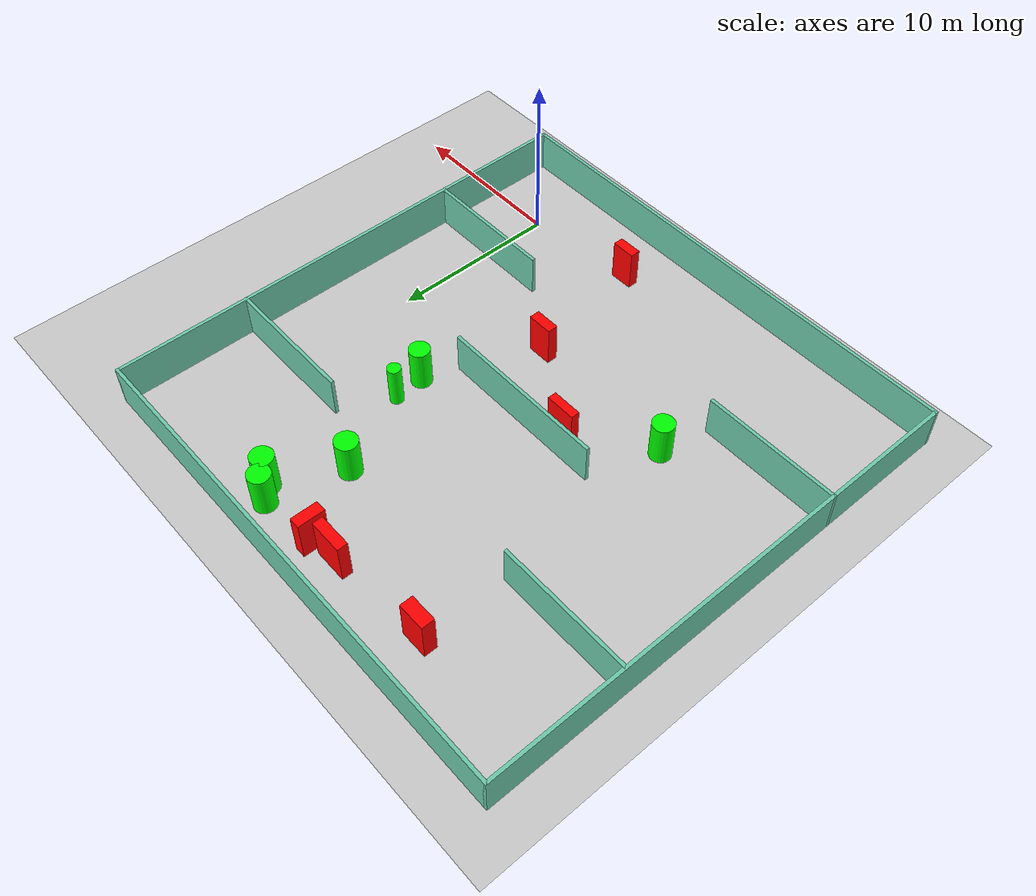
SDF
<sdf version="1.7">
 <world name="default">
  <light name="sun" type="directional">
   <pose>0 0 10 0 -0 0</pose>
   <diffuse>0.8 0.8 0.8 1</diffuse>
   <specular>0.2 0.2 0.2 1</specular>
   <attenuation>
    <range>1000</range>
    <constant>0.9</constant>
    <linear>0.01</linear>
    <quadratic>0.001</quadratic>
   </attenuation>
   <direction>-0.5 0.1 -0.9</direction>
   <spot><inner_angle>0</inner_angle><outer_angle>0</outer_angle><falloff>0</falloff></spot>
  </light>
  <model name="ground_plane">
   <static>1</static>
   <link name="link">
    <collision name="collision">
     <geometry><plane><normal>0 0 1</normal><size>100 100</size></plane></geometry>
     <surface>
      <contact><collide_bitmask>65535</collide_bitmask></contact>
      <friction><ode><mu>100</mu><mu2>50</mu2></ode></friction>
     </surface>
    </collision>
    <visual name="visual">
     <cast_shadows>0</cast_shadows>
     <geometry><plane><normal>0 0 1</normal><size>100 100</size></plane></geometry>
     <material>
      <script><uri>file://media/materials/scripts/gazebo.material</uri><name>Gazebo/Grey</name></script>
     </material>
    </visual>
   </link>
  </model>
  <gravity>0 0 -9.8</gravity>
  <magnetic_field>6e-06 2.3e-05 -4.2e-05</magnetic_field>
  <atmosphere type="adiabatic"/>
  <physics type="ode">
   <max_step_size>0.001</max_step_size>
   <real_time_factor>1</real_time_factor>
   <real_time_update_rate>1000</real_time_update_rate>
  </physics>
  <scene><ambient>0.4 0.4 0.4 1</ambient><background>0.7 0.7 0.7 1</background><shadows>1</shadows></scene>
  <spherical_coordinates>
   <surface_model>EARTH_WGS84</surface_model>
   <latitude_deg>0</latitude_deg>
   <longitude_deg>0</longitude_deg>
   <elevation>0</elevation>
   <heading_deg>0</heading_deg>
  </spherical_coordinates>
  <model name="my_base_walls">
   <link name="Wall_10">
    <collision name="Wall_10_Collision">
     <geometry><box><size>8.2 0.2 2.5</size></box></geometry>
     <pose>0 0 1.25 0 -0 0</pose>
    </collision>
    <visual name="Wall_10_Visual">
     <pose>0 0 1.25 0 -0 0</pose>
     <geometry><box><size>8.2 0.2 2.5</size></box></geometry>
     <material>
      <script><uri>file://media/materials/scripts/gazebo.material</uri><name>Gazebo/Grey</name></script>
      <ambient>0.435294 0.796078 0.67451 1</ambient>
     </material>
     <meta><layer>0</layer></meta>
    </visual>
    <pose>-11 -7 0 0 -0 0</pose>
   </link>
   <link name="Wall_12">
    <collision name="Wall_12_Collision">
     <geometry><box><size>8.2 0.2 2.5</size></box></geometry>
     <pose>0 0 1.25 0 -0 0</pose>
    </collision>
    <visual name="Wall_12_Visual">
     <pose>0 0 1.25 0 -0 0</pose>
     <geometry><box><size>8.2 0.2 2.5</size></box></geometry>
     <material>
      <script><uri>file://media/materials/scripts/gazebo.material</uri><name>Gazebo/Grey</name></script>
      <ambient>0.435294 0.796078 0.67451 1</ambient>
     </material>
     <meta><layer>0</layer></meta>
    </visual>
    <pose>-11 7 0 0 -0 0</pose>
   </link>
   <link name="Wall_14">
    <collision name="Wall_14_Collision">
     <geometry><box><size>8.2 0.2 2.5</size></box></geometry>
     <pose>0 0 1.25 0 -0 0</pose>
    </collision>
    <visual name="Wall_14_Visual">
     <pose>0 0 1.25 0 -0 0</pose>
     <geometry><box><size>8.2 0.2 2.5</size></box></geometry>
     <material>
      <script><uri>file://media/materials/scripts/gazebo.material</uri><name>Gazebo/Grey</name></script>
      <ambient>0.435294 0.796078 0.67451 1</ambient>
     </material>
     <meta><layer>0</layer></meta>
    </visual>
    <pose>11 7 0 0 -0 3.14159</pose>
   </link>
   <link name="Wall_16">
    <collision name="Wall_16_Collision">
     <geometry><box><size>10.2 0.2 2.5</size></box></geometry>
     <pose>0 0 1.25 0 -0 0</pose>
    </collision>
    <visual name="Wall_16_Visual">
     <pose>0 0 1.25 0 -0 0</pose>
     <geometry><box><size>10.2 0.2 2.5</size></box></geometry>
     <material>
      <script><uri>file://media/materials/scripts/gazebo.material</uri><name>Gazebo/Grey</name></script>
      <ambient>0.435294 0.796078 0.67451 1</ambient>
     </material>
     <meta><layer>0</layer></meta>
    </visual>
    <pose>0 0 0 0 -0 3.14159</pose>
   </link>
   <link name="Wall_2">
    <collision name="Wall_2_Collision">
     <geometry><box><size>30.2 0.2 2.5</size></box></geometry>
     <pose>0 0 1.25 0 -0 0</pose>
    </collision>
    <visual name="Wall_2_Visual">
     <pose>0 0 1.25 0 -0 0</pose>
     <geometry><box><size>30.2 0.2 2.5</size></box></geometry>
     <material>
      <script><uri>file://media/materials/scripts/gazebo.material</uri><name>Gazebo/Grey</name></script>
      <ambient>0.435294 0.796078 0.67451 1</ambient>
     </material>
     <meta><layer>0</layer></meta>
    </visual>
    <pose>0 -15 0 0 -0 3.14159</pose>
   </link>
   <link name="Wall_3">
    <collision name="Wall_3_Collision">
     <geometry><box><size>30.2 0.2 2.5</size></box></geometry>
     <pose>0 0 1.25 0 -0 0</pose>
    </collision>
    <visual name="Wall_3_Visual">
     <pose>0 0 1.25 0 -0 0</pose>
     <geometry><box><size>30.2 0.2 2.5</size></box></geometry>
     <material>
      <script><uri>file://media/materials/scripts/gazebo.material</uri><name>Gazebo/Grey</name></script>
      <ambient>0.435294 0.796078 0.67451 1</ambient>
     </material>
     <meta><layer>0</layer></meta>
    </visual>
    <pose>-15 0 0 0 -0 1.5708</pose>
   </link>
   <link name="Wall_4">
    <collision name="Wall_4_Collision">
     <geometry><box><size>30.2 0.2 2.5</size></box></geometry>
     <pose>0 0 1.25 0 -0 0</pose>
    </collision>
    <visual name="Wall_4_Visual">
     <pose>0 0 1.25 0 -0 0</pose>
     <geometry><box><size>30.2 0.2 2.5</size></box></geometry>
     <material>
      <script><uri>file://media/materials/scripts/gazebo.material</uri><name>Gazebo/Grey</name></script>
      <ambient>0.435294 0.796078 0.67451 1</ambient>
     </material>
     <meta><layer>0</layer></meta>
    </visual>
    <pose>0 15 0 0 -0 0</pose>
   </link>
   <link name="Wall_6">
    <collision name="Wall_6_Collision">
     <geometry><box><size>30.2 0.2 2.5</size></box></geometry>
     <pose>0 0 1.25 0 -0 0</pose>
    </collision>
    <visual name="Wall_6_Visual">
     <pose>0 0 1.25 0 -0 0</pose>
     <geometry><box><size>30.2 0.2 2.5</size></box></geometry>
     <material>
      <script><uri>file://media/materials/scripts/gazebo.material</uri><name>Gazebo/Grey</name></script>
      <ambient>0.435294 0.796078 0.67451 1</ambient>
     </material>
     <meta><layer>0</layer></meta>
    </visual>
    <pose>15 0 0 0 -0 1.5708</pose>
   </link>
   <link name="Wall_8">
    <collision name="Wall_8_Collision">
     <geometry><box><size>8.2 0.2 2.5</size></box></geometry>
     <pose>0 0 1.25 0 -0 0</pose>
    </collision>
    <visual name="Wall_8_Visual">
     <pose>0 0 1.25 0 -0 0</pose>
     <geometry><box><size>8.2 0.2 2.5</size></box></geometry>
     <material>
      <script><uri>file://media/materials/scripts/gazebo.material</uri><name>Gazebo/Grey</name></script>
      <ambient>0.435294 0.796078 0.67451 1</ambient>
     </material>
     <meta><layer>0</layer></meta>
    </visual>
    <pose>11 -7 0 0 -0 3.14159</pose>
   </link>
   <static>1</static>
   <pose>-11 11 0 0 -0 0</pose>
  </model>
  <model name="cylinder1">
   <static>1</static>
   <link name="link">
    <inertial>
     <mass>1</mass>
     <inertia><ixx>0.5</ixx><ixy>0</ixy><ixz>0</ixz><iyy>0.5</iyy><iyz>0</iyz><izz>1</izz></inertia>
    </inertial>
    <collision name="collision">
     <geometry><cylinder><radius>0.39538634632470365</radius><length>2.5</length></cylinder></geometry>
    </collision>
    <visual name="visual">
     <geometry><cylinder><radius>0.39538634632470365</radius><length>2.5</length></cylinder></geometry>
     <material>
      <ambient>0 1 0 1</ambient>
      <diffuse>0 1 0 1</diffuse>
      <specular>0.1 0.1 0.1 1</specular>
      <emissive>0 0 0 0</emissive>
     </material>
    </visual>
   </link>
   <pose>-5.423299868629563 14.99625423911587 1.25 0 0 0</pose>
  </model>
  <model name="cylinder2">
   <static>1</static>
   <link name="link">
    <inertial>
     <mass>1</mass>
     <inertia><ixx>0.5</ixx><ixy>0</ixy><ixz>0</ixz><iyy>0.5</iyy><iyz>0</iyz><izz>1</izz></inertia>
    </inertial>
    <collision name="collision">
     <geometry><cylinder><radius>0.6473197470135983</radius><length>2.5</length></cylinder></geometry>
    </collision>
    <visual name="visual">
     <geometry><cylinder><radius>0.6473197470135983</radius><length>2.5</length></cylinder></geometry>
     <material>
      <ambient>0 1 0 1</ambient>
      <diffuse>0 1 0 1</diffuse>
      <specular>0.1 0.1 0.1 1</specular>
      <emissive>0 0 0 0</emissive>
     </material>
    </visual>
   </link>
   <pose>-6.576218445684717 24.21504631854563 1.25 0 0 0</pose>
  </model>
  <model name="cylinder3">
   <static>1</static>
   <link name="link">
    <inertial>
     <mass>1</mass>
     <inertia><ixx>0.5</ixx><ixy>0</ixy><ixz>0</ixz><iyy>0.5</iyy><iyz>0</iyz><izz>1</izz></inertia>
    </inertial>
    <collision name="collision">
     <geometry><cylinder><radius>0.659853955017178</radius><length>2.5</length></cylinder></geometry>
    </collision>
    <visual name="visual">
     <geometry><cylinder><radius>0.659853955017178</radius><length>2.5</length></cylinder></geometry>
     <material>
      <ambient>0 1 0 1</ambient>
      <diffuse>0 1 0 1</diffuse>
      <specular>0.1 0.1 0.1 1</specular>
      <emissive>0 0 0 0</emissive>
     </material>
    </visual>
   </link>
   <pose>-7.727299230462403 19.76601484605504 1.25 0 0 0</pose>
  </model>
  <model name="cylinder4">
   <static>1</static>
   <link name="link">
    <inertial>
     <mass>1</mass>
     <inertia><ixx>0.5</ixx><ixy>0</ixy><ixz>0</ixz><iyy>0.5</iyy><iyz>0</iyz><izz>1</izz></inertia>
    </inertial>
    <collision name="collision">
     <geometry><cylinder><radius>0.6635986513829158</radius><length>2.5</length></cylinder></geometry>
    </collision>
    <visual name="visual">
     <geometry><cylinder><radius>0.6635986513829158</radius><length>2.5</length></cylinder></geometry>
     <material>
      <ambient>0 1 0 1</ambient>
      <diffuse>0 1 0 1</diffuse>
      <specular>0.1 0.1 0.1 1</specular>
      <emissive>0 0 0 0</emissive>
     </material>
    </visual>
   </link>
   <pose>-5.755159372320499 23.49881045079956 1.25 0 0 0</pose>
  </model>
  <model name="cylinder5">
   <static>1</static>
   <link name="link">
    <inertial>
     <mass>1</mass>
     <inertia><ixx>0.5</ixx><ixy>0</ixy><ixz>0</ixz><iyy>0.5</iyy><iyz>0</iyz><izz>1</izz></inertia>
    </inertial>
    <collision name="collision">
     <geometry><cylinder><radius>0.6048306003347275</radius><length>2.5</length></cylinder></geometry>
    </collision>
    <visual name="visual">
     <geometry><cylinder><radius>0.6048306003347275</radius><length>2.5</length></cylinder></geometry>
     <material>
      <ambient>0 1 0 1</ambient>
      <diffuse>0 1 0 1</diffuse>
      <specular>0.1 0.1 0.1 1</specular>
      <emissive>0 0 0 0</emissive>
     </material>
    </visual>
   </link>
   <pose>-5.2456247759694 13.153706694374304 1.25 0 0 0</pose>
  </model>
  <model name="cylinder6">
   <static>1</static>
   <link name="link">
    <inertial>
     <mass>1</mass>
     <inertia><ixx>0.5</ixx><ixy>0</ixy><ixz>0</ixz><iyy>0.5</iyy><iyz>0</iyz><izz>1</izz></inertia>
    </inertial>
    <collision name="collision">
     <geometry><cylinder><radius>0.6326457261620796</radius><length>2.5</length></cylinder></geometry>
    </collision>
    <visual name="visual">
     <geometry><cylinder><radius>0.6326457261620796</radius><length>2.5</length></cylinder></geometry>
     <material>
      <ambient>0 1 0 1</ambient>
      <diffuse>0 1 0 1</diffuse>
      <specular>0.1 0.1 0.1 1</specular>
      <emissive>0 0 0 0</emissive>
     </material>
    </visual>
   </link>
   <pose>-17.393147911468525 6.971442488746803 1.25 0 0 0</pose>
  </model>
  <model name="box1">
   <static>1</static>
   <link name="link">
    <inertial>
     <mass>1</mass>
     <inertia><ixx>0.083</ixx><ixy>0</ixy><ixz>0</ixz><iyy>0.083</iyy><iyz>0</iyz><izz>0.083</izz></inertia>
    </inertial>
    <collision name="collision">
     <geometry><box><size>1.415123285373575 0.6038041796594151 2.5</size></box></geometry>
    </collision>
    <visual name="visual">
     <geometry><box><size>1.415123285373575 0.6038041796594151 2.5</size></box></geometry>
     <material>
      <ambient>1 0 0 1</ambient>
      <diffuse>1 0 0 1</diffuse>
      <specular>0.1 0.1 0.1 1</specular>
      <emissive>0 0 0 0</emissive>
     </material>
    </visual>
    <sensor name="my_contact" type="contact">
     <contact><collision>box_collision</collision><topic>__default_topic__</topic></contact>
    </sensor>
   </link>
   <pose>-6.833591629339574 -0.6911814647722951 1.25 0 0 0</pose>
  </model>
  <model name="box2">
   <static>1</static>
   <link name="link">
    <inertial>
     <mass>1</mass>
     <inertia><ixx>0.083</ixx><ixy>0</ixy><ixz>0</ixz><iyy>0.083</iyy><iyz>0</iyz><izz>0.083</izz></inertia>
    </inertial>
    <collision name="collision">
     <geometry><box><size>1.785449379019286 0.5075209838721639 2.5</size></box></geometry>
    </collision>
    <visual name="visual">
     <geometry><box><size>1.785449379019286 0.5075209838721639 2.5</size></box></geometry>
     <material>
      <ambient>1 0 0 1</ambient>
      <diffuse>1 0 0 1</diffuse>
      <specular>0.1 0.1 0.1 1</specular>
      <emissive>0 0 0 0</emissive>
     </material>
    </visual>
    <sensor name="my_contact" type="contact">
     <contact><collision>box_collision</collision><topic>__default_topic__</topic></contact>
    </sensor>
   </link>
   <pose>-13.173174842166665 9.987892135969492 1.25 0 0 0</pose>
  </model>
  <model name="box3">
   <static>1</static>
   <link name="link">
    <inertial>
     <mass>1</mass>
     <inertia><ixx>0.083</ixx><ixy>0</ixy><ixz>0</ixz><iyy>0.083</iyy><iyz>0</iyz><izz>0.083</izz></inertia>
    </inertial>
    <collision name="collision">
     <geometry><box><size>2.01693952155033 0.6154159381858108 2.5</size></box></geometry>
    </collision>
    <visual name="visual">
     <geometry><box><size>2.01693952155033 0.6154159381858108 2.5</size></box></geometry>
     <material>
      <ambient>1 0 0 1</ambient>
      <diffuse>1 0 0 1</diffuse>
      <specular>0.1 0.1 0.1 1</specular>
      <emissive>0 0 0 0</emissive>
     </material>
    </visual>
    <sensor name="my_contact" type="contact">
     <contact><collision>box_collision</collision><topic>__default_topic__</topic></contact>
    </sensor>
   </link>
   <pose>-11.769209671542939 23.639170139517308 1.25 0 0 0</pose>
  </model>
  <model name="box4">
   <static>1</static>
   <link name="link">
    <inertial>
     <mass>1</mass>
     <inertia><ixx>0.083</ixx><ixy>0</ixy><ixz>0</ixz><iyy>0.083</iyy><iyz>0</iyz><izz>0.083</izz></inertia>
    </inertial>
    <collision name="collision">
     <geometry><box><size>1.505551603520755 0.6160304962534211 2.5</size></box></geometry>
    </collision>
    <visual name="visual">
     <geometry><box><size>1.505551603520755 0.6160304962534211 2.5</size></box></geometry>
     <material>
      <ambient>1 0 0 1</ambient>
      <diffuse>1 0 0 1</diffuse>
      <specular>0.1 0.1 0.1 1</specular>
      <emissive>0 0 0 0</emissive>
     </material>
    </visual>
    <sensor name="my_contact" type="contact">
     <contact><collision>box_collision</collision><topic>__default_topic__</topic></contact>
    </sensor>
   </link>
   <pose>-8.08843089578868 6.815614247690792 1.25 0 0 0</pose>
  </model>
  <model name="box5">
   <static>1</static>
   <link name="link">
    <inertial>
     <mass>1</mass>
     <inertia><ixx>0.083</ixx><ixy>0</ixy><ixz>0</ixz><iyy>0.083</iyy><iyz>0</iyz><izz>0.083</izz></inertia>
    </inertial>
    <collision name="collision">
     <geometry><box><size>0.6622610725187604 1.584361363111642 2.5</size></box></geometry>
    </collision>
    <visual name="visual">
     <geometry><box><size>0.6622610725187604 1.584361363111642 2.5</size></box></geometry>
     <material>
      <ambient>1 0 0 1</ambient>
      <diffuse>1 0 0 1</diffuse>
      <specular>0.1 0.1 0.1 1</specular>
      <emissive>0 0 0 0</emissive>
     </material>
    </visual>
    <sensor name="my_contact" type="contact">
     <contact><collision>box_collision</collision><topic>__default_topic__</topic></contact>
    </sensor>
   </link>
   <pose>-10.16436667111802 23.80135850330603 1.25 0 0 0</pose>
  </model>
  <model name="box6">
   <static>1</static>
   <link name="link">
    <inertial>
     <mass>1</mass>
     <inertia><ixx>0.083</ixx><ixy>0</ixy><ixz>0</ixz><iyy>0.083</iyy><iyz>0</iyz><izz>0.083</izz></inertia>
    </inertial>
    <collision name="collision">
     <geometry><box><size>1.6197292985571154 0.7633292408404528 2.5</size></box></geometry>
    </collision>
    <visual name="visual">
     <geometry><box><size>1.6197292985571154 0.7633292408404528 2.5</size></box></geometry>
     <material>
      <ambient>1 0 0 1</ambient>
      <diffuse>1 0 0 1</diffuse>
      <specular>0.1 0.1 0.1 1</specular>
      <emissive>0 0 0 0</emissive>
     </material>
    </visual>
    <sensor name="my_contact" type="contact">
     <contact><collision>box_collision</collision><topic>__default_topic__</topic></contact>
    </sensor>
   </link>
   <pose>-17.83352590204708 23.172824500824685 1.25 0 0 0</pose>
  </model>
 </world>
</sdf>
